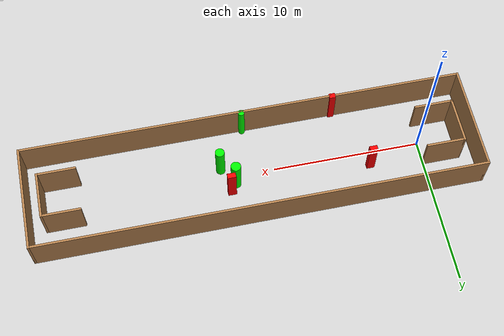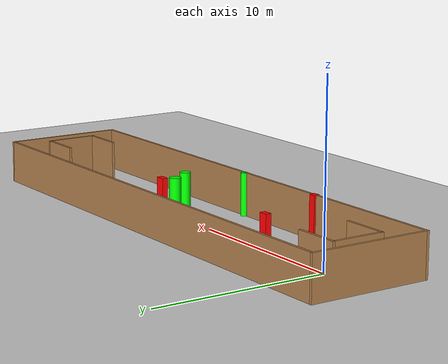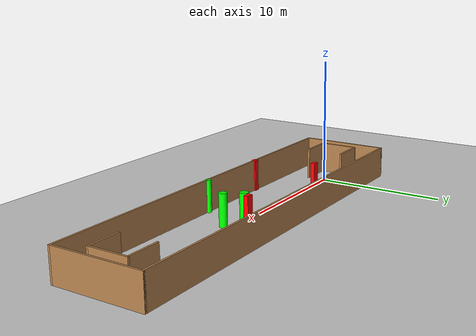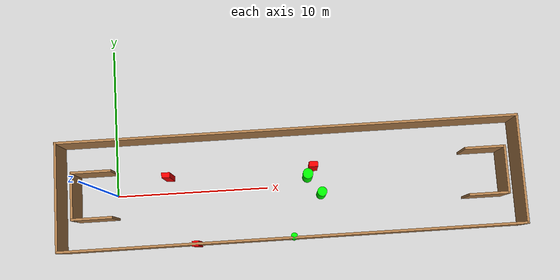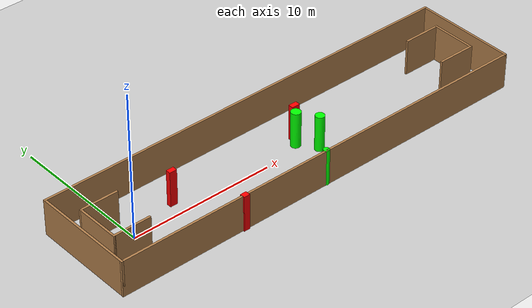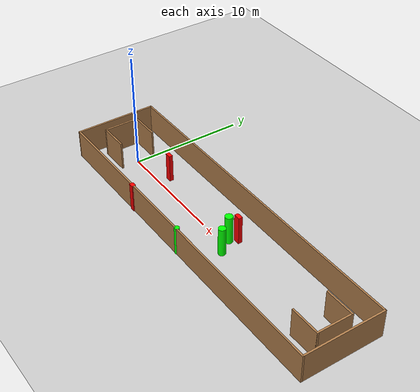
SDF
<sdf version="1.7">
 <world name="default">
  <light name="sun" type="directional">
   <pose>0 0 10 0 -0 0</pose>
   <diffuse>0.8 0.8 0.8 1</diffuse>
   <specular>0.2 0.2 0.2 1</specular>
   <attenuation>
    <range>1000</range>
    <constant>0.9</constant>
    <linear>0.01</linear>
    <quadratic>0.001</quadratic>
   </attenuation>
   <direction>-0.5 0.1 -0.9</direction>
   <spot><inner_angle>0</inner_angle><outer_angle>0</outer_angle><falloff>0</falloff></spot>
  </light>
  <model name="ground_plane">
   <static>1</static>
   <link name="link">
    <collision name="collision">
     <geometry><plane><normal>0 0 1</normal><size>100 100</size></plane></geometry>
     <surface>
      <contact><collide_bitmask>65535</collide_bitmask></contact>
      <friction><ode><mu>100</mu><mu2>50</mu2></ode></friction>
     </surface>
    </collision>
    <visual name="visual">
     <cast_shadows>0</cast_shadows>
     <geometry><plane><normal>0 0 1</normal><size>100 100</size></plane></geometry>
     <material>
      <script><uri>file://media/materials/scripts/gazebo.material</uri><name>Gazebo/Grey</name></script>
     </material>
    </visual>
   </link>
  </model>
  <gravity>0 0 -9.8</gravity>
  <magnetic_field>6e-06 2.3e-05 -4.2e-05</magnetic_field>
  <atmosphere type="adiabatic"/>
  <physics type="ode">
   <max_step_size>0.001</max_step_size>
   <real_time_factor>1</real_time_factor>
   <real_time_update_rate>1000</real_time_update_rate>
  </physics>
  <scene><ambient>0.4 0.4 0.4 1</ambient><background>0.7 0.7 0.7 1</background><shadows>1</shadows></scene>
  <spherical_coordinates>
   <surface_model>EARTH_WGS84</surface_model>
   <latitude_deg>0</latitude_deg>
   <longitude_deg>0</longitude_deg>
   <elevation>0</elevation>
   <heading_deg>0</heading_deg>
  </spherical_coordinates>
  <model name="my_base_walls">
   <link name="Wall_0">
    <collision name="Wall_0_Collision">
     <geometry><box><size>7.15 0.15 2.5</size></box></geometry>
     <pose>0 0 1.25 0 -0 0</pose>
    </collision>
    <visual name="Wall_0_Visual">
     <pose>0 0 1.25 0 -0 0</pose>
     <geometry><box><size>7.15 0.15 2.5</size></box></geometry>
     <material>
      <script><uri>file://media/materials/scripts/gazebo.material</uri><name>Gazebo/Wood</name></script>
      <ambient>1 1 1 1</ambient>
     </material>
     <meta><layer>0</layer></meta>
    </visual>
    <pose>-15 0 0 0 -0 1.5708</pose>
   </link>
   <link name="Wall_10">
    <collision name="Wall_10_Collision">
     <geometry><box><size>2.65 0.15 2.5</size></box></geometry>
     <pose>0 0 1.25 0 -0 0</pose>
    </collision>
    <visual name="Wall_10_Visual">
     <pose>0 0 1.25 0 -0 0</pose>
     <geometry><box><size>2.65 0.15 2.5</size></box></geometry>
     <material>
      <script><uri>file://media/materials/scripts/gazebo.material</uri><name>Gazebo/Wood</name></script>
      <ambient>1 1 1 1</ambient>
     </material>
     <meta><layer>0</layer></meta>
    </visual>
    <pose>-12.75 -1.5 0 0 -0 0</pose>
   </link>
   <link name="Wall_12">
    <collision name="Wall_12_Collision">
     <geometry><box><size>2.65 0.15 2.5</size></box></geometry>
     <pose>0 0 1.25 0 -0 0</pose>
    </collision>
    <visual name="Wall_12_Visual">
     <pose>0 0 1.25 0 -0 0</pose>
     <geometry><box><size>2.65 0.15 2.5</size></box></geometry>
     <material>
      <script><uri>file://media/materials/scripts/gazebo.material</uri><name>Gazebo/Wood</name></script>
      <ambient>1 1 1 1</ambient>
     </material>
     <meta><layer>0</layer></meta>
    </visual>
    <pose>-12.75 1.5 0 0 -0 0</pose>
   </link>
   <link name="Wall_14">
    <collision name="Wall_14_Collision">
     <geometry><box><size>3.15 0.15 2.5</size></box></geometry>
     <pose>0 0 1.25 0 -0 0</pose>
    </collision>
    <visual name="Wall_14_Visual">
     <pose>0 0 1.25 0 -0 0</pose>
     <geometry><box><size>3.15 0.15 2.5</size></box></geometry>
     <material>
      <script><uri>file://media/materials/scripts/gazebo.material</uri><name>Gazebo/Wood</name></script>
      <ambient>1 1 1 1</ambient>
     </material>
     <meta><layer>0</layer></meta>
    </visual>
    <pose>14 0 0 0 -0 -1.5708</pose>
   </link>
   <link name="Wall_15">
    <collision name="Wall_15_Collision">
     <geometry><box><size>2.65 0.15 2.5</size></box></geometry>
     <pose>0 0 1.25 0 -0 0</pose>
    </collision>
    <visual name="Wall_15_Visual">
     <pose>0 0 1.25 0 -0 0</pose>
     <geometry><box><size>2.65 0.15 2.5</size></box></geometry>
     <material>
      <script><uri>file://media/materials/scripts/gazebo.material</uri><name>Gazebo/Wood</name></script>
      <ambient>1 1 1 1</ambient>
     </material>
     <meta><layer>0</layer></meta>
    </visual>
    <pose>12.75 -1.5 0 0 -0 3.14159</pose>
   </link>
   <link name="Wall_17">
    <collision name="Wall_17_Collision">
     <geometry><box><size>2.65 0.15 2.5</size></box></geometry>
     <pose>0 0 1.25 0 -0 0</pose>
    </collision>
    <visual name="Wall_17_Visual">
     <pose>0 0 1.25 0 -0 0</pose>
     <geometry><box><size>2.65 0.15 2.5</size></box></geometry>
     <material>
      <script><uri>file://media/materials/scripts/gazebo.material</uri><name>Gazebo/Wood</name></script>
      <ambient>1 1 1 1</ambient>
     </material>
     <meta><layer>0</layer></meta>
    </visual>
    <pose>12.75 1.5 0 0 -0 3.14159</pose>
   </link>
   <link name="Wall_2">
    <collision name="Wall_2_Collision">
     <geometry><box><size>30.15 0.15 2.5</size></box></geometry>
     <pose>0 0 1.25 0 -0 0</pose>
    </collision>
    <visual name="Wall_2_Visual">
     <pose>0 0 1.25 0 -0 0</pose>
     <geometry><box><size>30.15 0.15 2.5</size></box></geometry>
     <material>
      <script><uri>file://media/materials/scripts/gazebo.material</uri><name>Gazebo/Wood</name></script>
      <ambient>1 1 1 1</ambient>
     </material>
     <meta><layer>0</layer></meta>
    </visual>
    <pose>-0 -3.5 0 0 -0 0</pose>
   </link>
   <link name="Wall_4">
    <collision name="Wall_4_Collision">
     <geometry><box><size>30.15 0.15 2.5</size></box></geometry>
     <pose>0 0 1.25 0 -0 0</pose>
    </collision>
    <visual name="Wall_4_Visual">
     <pose>0 0 1.25 0 -0 0</pose>
     <geometry><box><size>30.15 0.15 2.5</size></box></geometry>
     <material>
      <script><uri>file://media/materials/scripts/gazebo.material</uri><name>Gazebo/Wood</name></script>
      <ambient>1 1 1 1</ambient>
     </material>
     <meta><layer>0</layer></meta>
    </visual>
    <pose>-0 3.5 0 0 -0 0</pose>
   </link>
   <link name="Wall_6">
    <collision name="Wall_6_Collision">
     <geometry><box><size>7.15 0.15 2.5</size></box></geometry>
     <pose>0 0 1.25 0 -0 0</pose>
    </collision>
    <visual name="Wall_6_Visual">
     <pose>0 0 1.25 0 -0 0</pose>
     <geometry><box><size>7.15 0.15 2.5</size></box></geometry>
     <material>
      <script><uri>file://media/materials/scripts/gazebo.material</uri><name>Gazebo/Wood</name></script>
      <ambient>1 1 1 1</ambient>
     </material>
     <meta><layer>0</layer></meta>
    </visual>
    <pose>15 0 0 0 -0 -1.5708</pose>
   </link>
   <link name="Wall_9">
    <collision name="Wall_9_Collision">
     <geometry><box><size>3.15 0.15 2.5</size></box></geometry>
     <pose>0 0 1.25 0 -0 0</pose>
    </collision>
    <visual name="Wall_9_Visual">
     <pose>0 0 1.25 0 -0 0</pose>
     <geometry><box><size>3.15 0.15 2.5</size></box></geometry>
     <material>
      <script><uri>file://media/materials/scripts/gazebo.material</uri><name>Gazebo/Wood</name></script>
      <ambient>1 1 1 1</ambient>
     </material>
     <meta><layer>0</layer></meta>
    </visual>
    <pose>-14 0 0 0 -0 -1.5708</pose>
   </link>
   <static>1</static>
   <pose>11.5 0 0 0 -0 0</pose>
  </model>
  <model name="cylinder1">
   <static>1</static>
   <link name="link">
    <inertial>
     <mass>1</mass>
     <inertia><ixx>0.5</ixx><ixy>0</ixy><ixz>0</ixz><iyy>0.5</iyy><iyz>0</iyz><izz>1</izz></inertia>
    </inertial>
    <collision name="collision">
     <geometry><cylinder><radius>0.33540968757355827</radius><length>2.5</length></cylinder></geometry>
    </collision>
    <visual name="visual">
     <geometry><cylinder><radius>0.33540968757355827</radius><length>2.5</length></cylinder></geometry>
     <material>
      <ambient>0 1 0 1</ambient>
      <diffuse>0 1 0 1</diffuse>
      <specular>0.1 0.1 0.1 1</specular>
      <emissive>0 0 0 0</emissive>
     </material>
    </visual>
   </link>
   <pose>12.717427395751631 0.5104017652876829 1.25 0 0 0</pose>
  </model>
  <model name="cylinder2">
   <static>1</static>
   <link name="link">
    <inertial>
     <mass>1</mass>
     <inertia><ixx>0.5</ixx><ixy>0</ixy><ixz>0</ixz><iyy>0.5</iyy><iyz>0</iyz><izz>1</izz></inertia>
    </inertial>
    <collision name="collision">
     <geometry><cylinder><radius>0.3098445054220129</radius><length>2.5</length></cylinder></geometry>
    </collision>
    <visual name="visual">
     <geometry><cylinder><radius>0.3098445054220129</radius><length>2.5</length></cylinder></geometry>
     <material>
      <ambient>0 1 0 1</ambient>
      <diffuse>0 1 0 1</diffuse>
      <specular>0.1 0.1 0.1 1</specular>
      <emissive>0 0 0 0</emissive>
     </material>
    </visual>
   </link>
   <pose>13.553326372008755 -0.6991050302182233 1.25 0 0 0</pose>
  </model>
  <model name="cylinder3">
   <static>1</static>
   <link name="link">
    <inertial>
     <mass>1</mass>
     <inertia><ixx>0.5</ixx><ixy>0</ixy><ixz>0</ixz><iyy>0.5</iyy><iyz>0</iyz><izz>1</izz></inertia>
    </inertial>
    <collision name="collision">
     <geometry><cylinder><radius>0.2139373052611516</radius><length>2.5</length></cylinder></geometry>
    </collision>
    <visual name="visual">
     <geometry><cylinder><radius>0.2139373052611516</radius><length>2.5</length></cylinder></geometry>
     <material>
      <ambient>0 1 0 1</ambient>
      <diffuse>0 1 0 1</diffuse>
      <specular>0.1 0.1 0.1 1</specular>
      <emissive>0 0 0 0</emissive>
     </material>
    </visual>
   </link>
   <pose>11.586288508376922 -3.413601381815904 1.25 0 0 0</pose>
  </model>
  <model name="box1">
   <static>1</static>
   <link name="link">
    <inertial>
     <mass>1</mass>
     <inertia><ixx>0.083</ixx><ixy>0</ixy><ixz>0</ixz><iyy>0.083</iyy><iyz>0</iyz><izz>0.083</izz></inertia>
    </inertial>
    <collision name="collision">
     <geometry><box><size>0.5665263811244861 0.34528766221834495 2.5</size></box></geometry>
    </collision>
    <visual name="visual">
     <geometry><box><size>0.5665263811244861 0.34528766221834495 2.5</size></box></geometry>
     <material>
      <ambient>1 0 0 1</ambient>
      <diffuse>1 0 0 1</diffuse>
      <specular>0.1 0.1 0.1 1</specular>
      <emissive>0 0 0 0</emissive>
     </material>
    </visual>
    <sensor name="my_contact" type="contact">
     <contact><collision>box_collision</collision><topic>__default_topic__</topic></contact>
    </sensor>
   </link>
   <pose>13.110162203340899 1.1057281424500829 1.25 0 0 0</pose>
  </model>
  <model name="box2">
   <static>1</static>
   <link name="link">
    <inertial>
     <mass>1</mass>
     <inertia><ixx>0.083</ixx><ixy>0</ixy><ixz>0</ixz><iyy>0.083</iyy><iyz>0</iyz><izz>0.083</izz></inertia>
    </inertial>
    <collision name="collision">
     <geometry><box><size>0.5248434050484854 0.3299624444608783 2.5</size></box></geometry>
    </collision>
    <visual name="visual">
     <geometry><box><size>0.5248434050484854 0.3299624444608783 2.5</size></box></geometry>
     <material>
      <ambient>1 0 0 1</ambient>
      <diffuse>1 0 0 1</diffuse>
      <specular>0.1 0.1 0.1 1</specular>
      <emissive>0 0 0 0</emissive>
     </material>
    </visual>
    <sensor name="my_contact" type="contact">
     <contact><collision>box_collision</collision><topic>__default_topic__</topic></contact>
    </sensor>
   </link>
   <pose>3.5741746013907107 0.9821064734107816 1.25 0 0 0</pose>
  </model>
  <model name="box3">
   <static>1</static>
   <link name="link">
    <inertial>
     <mass>1</mass>
     <inertia><ixx>0.083</ixx><ixy>0</ixy><ixz>0</ixz><iyy>0.083</iyy><iyz>0</iyz><izz>0.083</izz></inertia>
    </inertial>
    <collision name="collision">
     <geometry><box><size>0.4177355684585756 0.3426346763427731 2.5</size></box></geometry>
    </collision>
    <visual name="visual">
     <geometry><box><size>0.4177355684585756 0.3426346763427731 2.5</size></box></geometry>
     <material>
      <ambient>1 0 0 1</ambient>
      <diffuse>1 0 0 1</diffuse>
      <specular>0.1 0.1 0.1 1</specular>
      <emissive>0 0 0 0</emissive>
     </material>
    </visual>
    <sensor name="my_contact" type="contact">
     <contact><collision>box_collision</collision><topic>__default_topic__</topic></contact>
    </sensor>
   </link>
   <pose>5.291890739081619 -3.4905541370045268 1.25 0 0 0</pose>
  </model>
 </world>
</sdf>
